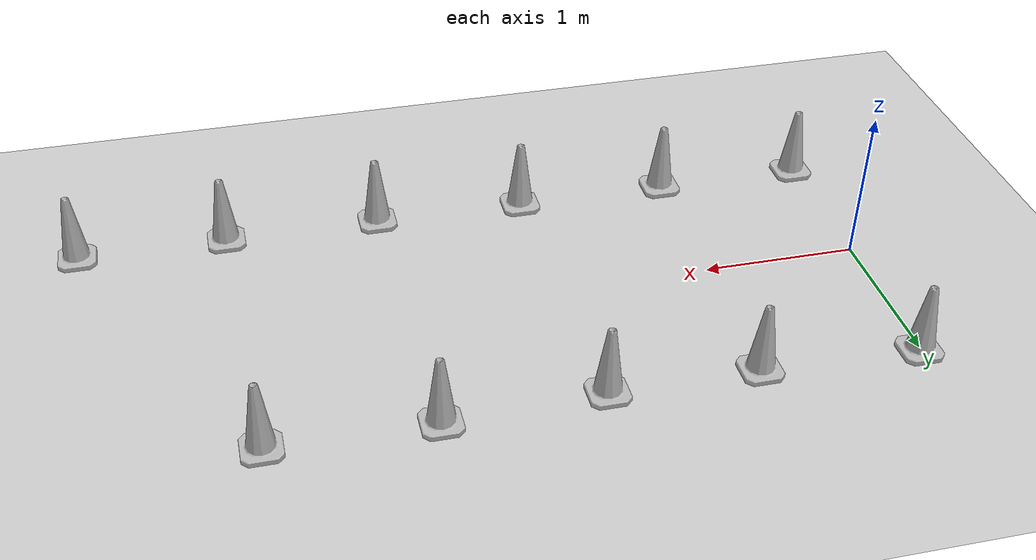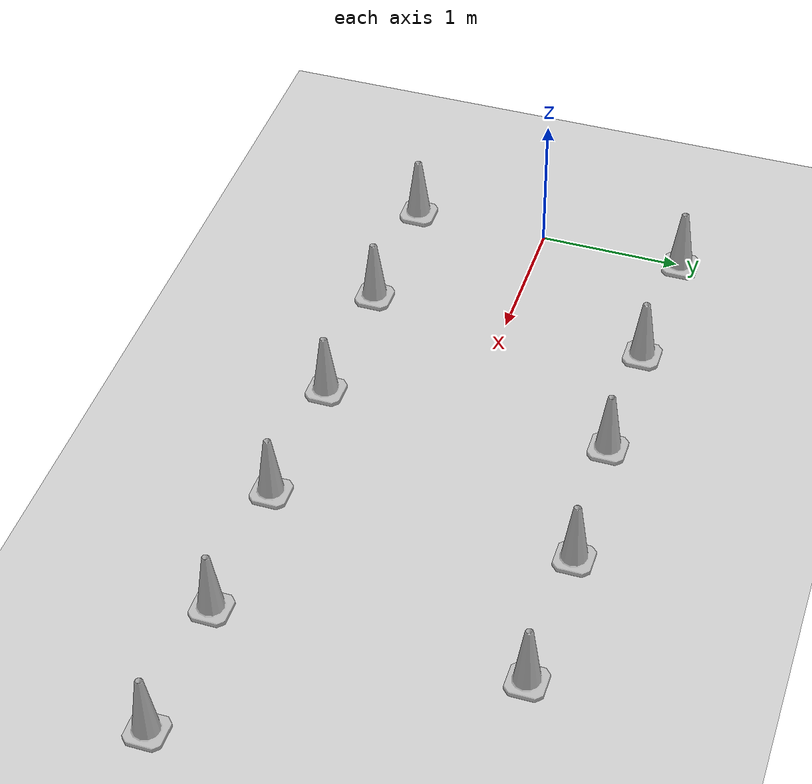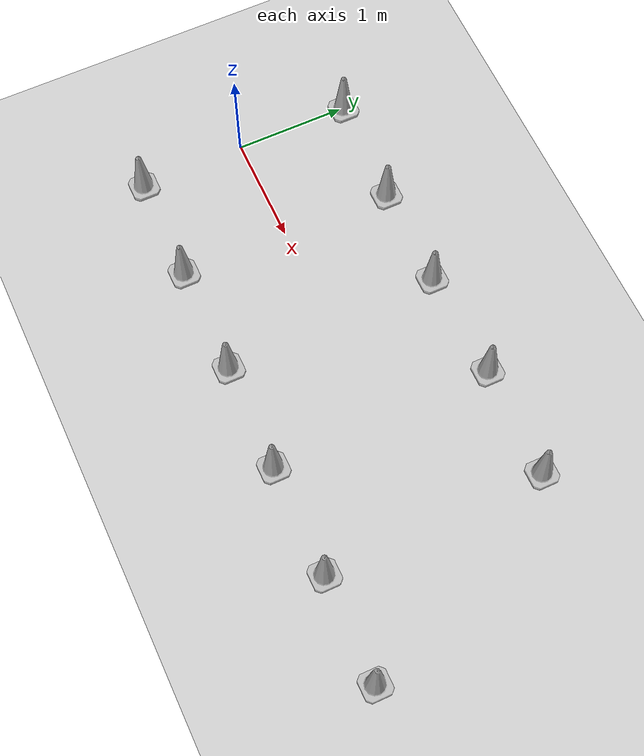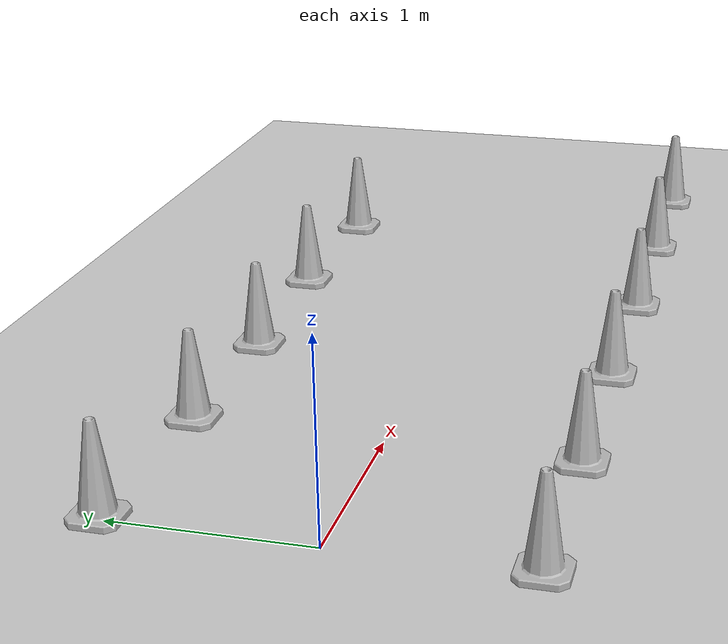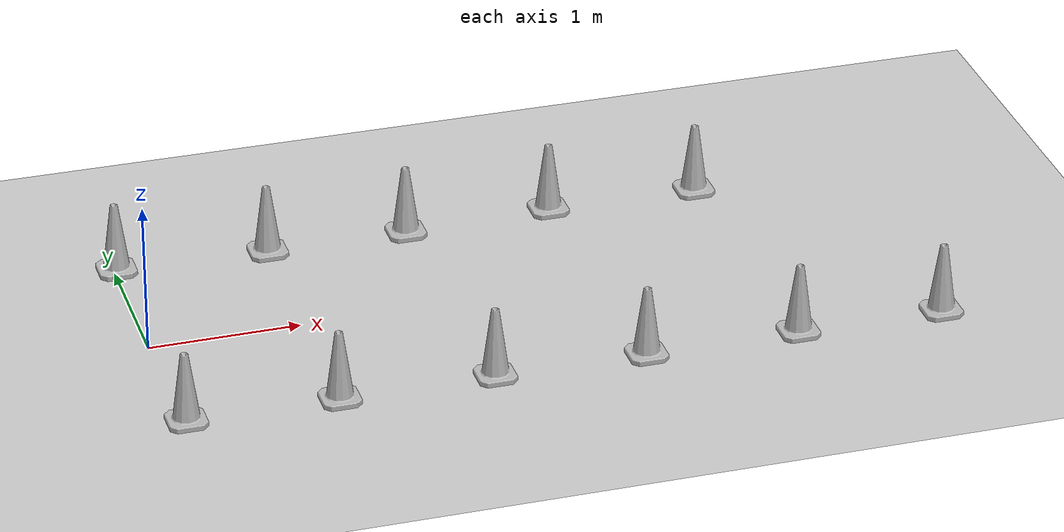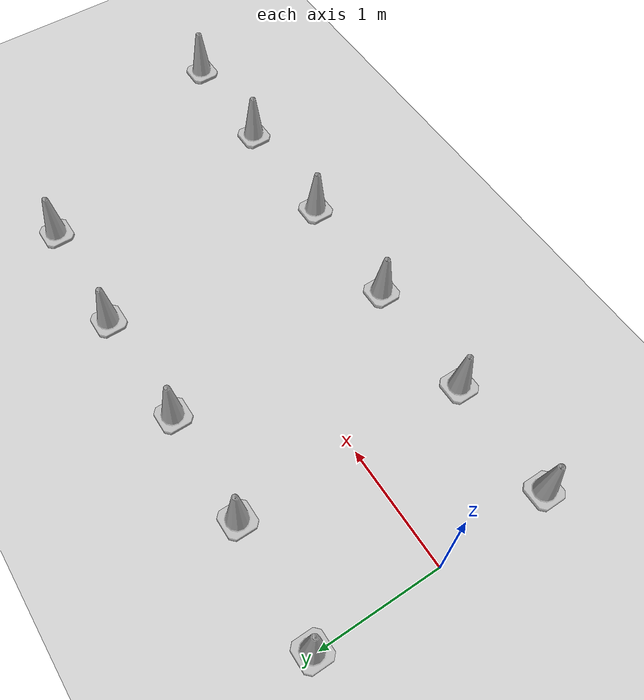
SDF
<sdf version="1.7">
 <world name="default">
  <model name="ground_plane">
   <static>1</static>
   <link name="link">
    <collision name="collision">
     <geometry><plane><normal>0 0 1</normal><size>100 100</size></plane></geometry>
     <surface>
      <contact><collide_bitmask>65535</collide_bitmask></contact>
      <friction><ode><mu>100</mu><mu2>50</mu2></ode></friction>
     </surface>
    </collision>
    <visual name="visual">
     <cast_shadows>0</cast_shadows>
     <geometry><plane><normal>0 0 1</normal><size>100 100</size></plane></geometry>
     <material>
      <script><uri>file://media/materials/scripts/gazebo.material</uri><name>Gazebo/Grey</name></script>
     </material>
    </visual>
   </link>
  </model>
  <model name="Construction_Cone_b">
   <link name="link">
    <inertial>
     <inertia><ixx>1</ixx><ixy>0</ixy><ixz>0</ixz><iyy>1</iyy><iyz>0</iyz><izz>1</izz></inertia>
     <mass>1</mass>
    </inertial>
    <visual name="visual">
     <geometry>
      <mesh><scale>4.9 4.9 4.5</scale><uri>./construction_cone/meshes/construction_cone_b.dae</uri></mesh>
     </geometry>
     <material><shader type="pixel"/></material>
    </visual>
    <collision name="collision">
     <geometry>
      <mesh><uri>./construction_cone/meshes/construction_cone_b.dae</uri><scale>4.9 4.9 4.5</scale></mesh>
     </geometry>
     <surface>
      <friction>
       <ode><mu>1</mu><mu2>1</mu2><fdir1>0 0 0</fdir1><slip1>0</slip1><slip2>0</slip2></ode>
       <torsional>
        <coefficient>1</coefficient>
        <patch_radius>0</patch_radius>
        <surface_radius>0</surface_radius>
        <use_patch_radius>1</use_patch_radius>
        <ode><slip>0</slip></ode>
       </torsional>
      </friction>
      <bounce><restitution_coefficient>0</restitution_coefficient><threshold>1e+06</threshold></bounce>
      <contact>
       <collide_without_contact>0</collide_without_contact>
       <collide_without_contact_bitmask>1</collide_without_contact_bitmask>
       <collide_bitmask>1</collide_bitmask>
       <ode>
        <soft_cfm>0</soft_cfm>
        <soft_erp>0.2</soft_erp>
        <kp>1e+13</kp>
        <kd>1</kd>
        <max_vel>0.01</max_vel>
        <min_depth>0</min_depth>
       </ode>
       <bullet>
        <split_impulse>1</split_impulse>
        <split_impulse_penetration_threshold>-0.01</split_impulse_penetration_threshold>
        <soft_cfm>0</soft_cfm>
        <soft_erp>0.2</soft_erp>
        <kp>1e+13</kp>
        <kd>1</kd>
       </bullet>
      </contact>
     </surface>
    </collision>
   </link>
   <static>0</static>
   <pose>0.026027 -0.961354 -2e-06 0 -0 0</pose>
  </model>
  <model name="Construction_Cone_b_0">
   <link name="link">
    <inertial>
     <inertia><ixx>1</ixx><ixy>0</ixy><ixz>0</ixz><iyy>1</iyy><iyz>0</iyz><izz>1</izz></inertia>
     <mass>1</mass>
    </inertial>
    <visual name="visual">
     <geometry>
      <mesh><scale>4.9 4.9 4.5</scale><uri>./construction_cone/meshes/construction_cone_b.dae</uri></mesh>
     </geometry>
     <material><shader type="pixel"/></material>
    </visual>
    <collision name="collision">
     <geometry>
      <mesh><uri>./construction_cone/meshes/construction_cone_b.dae</uri><scale>4.9 4.9 4.5</scale></mesh>
     </geometry>
     <surface>
      <friction>
       <ode><mu>1</mu><mu2>1</mu2><fdir1>0 0 0</fdir1><slip1>0</slip1><slip2>0</slip2></ode>
       <torsional>
        <coefficient>1</coefficient>
        <patch_radius>0</patch_radius>
        <surface_radius>0</surface_radius>
        <use_patch_radius>1</use_patch_radius>
        <ode><slip>0</slip></ode>
       </torsional>
      </friction>
      <bounce><restitution_coefficient>0</restitution_coefficient><threshold>1e+06</threshold></bounce>
      <contact>
       <collide_without_contact>0</collide_without_contact>
       <collide_without_contact_bitmask>1</collide_without_contact_bitmask>
       <collide_bitmask>1</collide_bitmask>
       <ode>
        <soft_cfm>0</soft_cfm>
        <soft_erp>0.2</soft_erp>
        <kp>1e+13</kp>
        <kd>1</kd>
        <max_vel>0.01</max_vel>
        <min_depth>0</min_depth>
       </ode>
       <bullet>
        <split_impulse>1</split_impulse>
        <split_impulse_penetration_threshold>-0.01</split_impulse_penetration_threshold>
        <soft_cfm>0</soft_cfm>
        <soft_erp>0.2</soft_erp>
        <kp>1e+13</kp>
        <kd>1</kd>
       </bullet>
      </contact>
     </surface>
    </collision>
   </link>
   <static>0</static>
   <pose>1.00444 -0.972853 -3e-06 0 3e-06 0</pose>
  </model>
  <model name="Construction_Cone_b_1">
   <link name="link">
    <inertial>
     <inertia><ixx>1</ixx><ixy>0</ixy><ixz>0</ixz><iyy>1</iyy><iyz>0</iyz><izz>1</izz></inertia>
     <mass>1</mass>
    </inertial>
    <visual name="visual">
     <geometry>
      <mesh><scale>4.9 4.9 4.5</scale><uri>./construction_cone/meshes/construction_cone_b.dae</uri></mesh>
     </geometry>
     <material><shader type="pixel"/></material>
    </visual>
    <collision name="collision">
     <geometry>
      <mesh><uri>./construction_cone/meshes/construction_cone_b.dae</uri><scale>4.9 4.9 4.5</scale></mesh>
     </geometry>
     <surface>
      <friction>
       <ode><mu>1</mu><mu2>1</mu2><fdir1>0 0 0</fdir1><slip1>0</slip1><slip2>0</slip2></ode>
       <torsional>
        <coefficient>1</coefficient>
        <patch_radius>0</patch_radius>
        <surface_radius>0</surface_radius>
        <use_patch_radius>1</use_patch_radius>
        <ode><slip>0</slip></ode>
       </torsional>
      </friction>
      <bounce><restitution_coefficient>0</restitution_coefficient><threshold>1e+06</threshold></bounce>
      <contact>
       <collide_without_contact>0</collide_without_contact>
       <collide_without_contact_bitmask>1</collide_without_contact_bitmask>
       <collide_bitmask>1</collide_bitmask>
       <ode>
        <soft_cfm>0</soft_cfm>
        <soft_erp>0.2</soft_erp>
        <kp>1e+13</kp>
        <kd>1</kd>
        <max_vel>0.01</max_vel>
        <min_depth>0</min_depth>
       </ode>
       <bullet>
        <split_impulse>1</split_impulse>
        <split_impulse_penetration_threshold>-0.01</split_impulse_penetration_threshold>
        <soft_cfm>0</soft_cfm>
        <soft_erp>0.2</soft_erp>
        <kp>1e+13</kp>
        <kd>1</kd>
       </bullet>
      </contact>
     </surface>
    </collision>
   </link>
   <static>0</static>
   <pose>2.01299 -0.976298 -0 1e-06 -1e-06 0</pose>
  </model>
  <model name="Construction_Cone_b_2">
   <link name="link">
    <inertial>
     <inertia><ixx>1</ixx><ixy>0</ixy><ixz>0</ixz><iyy>1</iyy><iyz>0</iyz><izz>1</izz></inertia>
     <mass>1</mass>
    </inertial>
    <visual name="visual">
     <geometry>
      <mesh><scale>4.9 4.9 4.5</scale><uri>./construction_cone/meshes/construction_cone_b.dae</uri></mesh>
     </geometry>
     <material><shader type="pixel"/></material>
    </visual>
    <collision name="collision">
     <geometry>
      <mesh><uri>./construction_cone/meshes/construction_cone_b.dae</uri><scale>4.9 4.9 4.5</scale></mesh>
     </geometry>
     <surface>
      <friction>
       <ode><mu>1</mu><mu2>1</mu2><fdir1>0 0 0</fdir1><slip1>0</slip1><slip2>0</slip2></ode>
       <torsional>
        <coefficient>1</coefficient>
        <patch_radius>0</patch_radius>
        <surface_radius>0</surface_radius>
        <use_patch_radius>1</use_patch_radius>
        <ode><slip>0</slip></ode>
       </torsional>
      </friction>
      <bounce><restitution_coefficient>0</restitution_coefficient><threshold>1e+06</threshold></bounce>
      <contact>
       <collide_without_contact>0</collide_without_contact>
       <collide_without_contact_bitmask>1</collide_without_contact_bitmask>
       <collide_bitmask>1</collide_bitmask>
       <ode>
        <soft_cfm>0</soft_cfm>
        <soft_erp>0.2</soft_erp>
        <kp>1e+13</kp>
        <kd>1</kd>
        <max_vel>0.01</max_vel>
        <min_depth>0</min_depth>
       </ode>
       <bullet>
        <split_impulse>1</split_impulse>
        <split_impulse_penetration_threshold>-0.01</split_impulse_penetration_threshold>
        <soft_cfm>0</soft_cfm>
        <soft_erp>0.2</soft_erp>
        <kp>1e+13</kp>
        <kd>1</kd>
       </bullet>
      </contact>
     </surface>
    </collision>
   </link>
   <static>0</static>
   <pose>3.00611 -0.994358 -5e-06 0 -1e-06 0</pose>
  </model>
  <model name="Construction_Cone_b_3">
   <link name="link">
    <inertial>
     <inertia><ixx>1</ixx><ixy>0</ixy><ixz>0</ixz><iyy>1</iyy><iyz>0</iyz><izz>1</izz></inertia>
     <mass>1</mass>
    </inertial>
    <visual name="visual">
     <geometry>
      <mesh><scale>4.9 4.9 4.5</scale><uri>./construction_cone/meshes/construction_cone_b.dae</uri></mesh>
     </geometry>
     <material><shader type="pixel"/></material>
    </visual>
    <collision name="collision">
     <geometry>
      <mesh><uri>./construction_cone/meshes/construction_cone_b.dae</uri><scale>4.9 4.9 4.5</scale></mesh>
     </geometry>
     <surface>
      <friction>
       <ode><mu>1</mu><mu2>1</mu2><fdir1>0 0 0</fdir1><slip1>0</slip1><slip2>0</slip2></ode>
       <torsional>
        <coefficient>1</coefficient>
        <patch_radius>0</patch_radius>
        <surface_radius>0</surface_radius>
        <use_patch_radius>1</use_patch_radius>
        <ode><slip>0</slip></ode>
       </torsional>
      </friction>
      <bounce><restitution_coefficient>0</restitution_coefficient><threshold>1e+06</threshold></bounce>
      <contact>
       <collide_without_contact>0</collide_without_contact>
       <collide_without_contact_bitmask>1</collide_without_contact_bitmask>
       <collide_bitmask>1</collide_bitmask>
       <ode>
        <soft_cfm>0</soft_cfm>
        <soft_erp>0.2</soft_erp>
        <kp>1e+13</kp>
        <kd>1</kd>
        <max_vel>0.01</max_vel>
        <min_depth>0</min_depth>
       </ode>
       <bullet>
        <split_impulse>1</split_impulse>
        <split_impulse_penetration_threshold>-0.01</split_impulse_penetration_threshold>
        <soft_cfm>0</soft_cfm>
        <soft_erp>0.2</soft_erp>
        <kp>1e+13</kp>
        <kd>1</kd>
       </bullet>
      </contact>
     </surface>
    </collision>
   </link>
   <static>0</static>
   <pose>4.02407 -0.994957 -3e-06 0 -0 0</pose>
  </model>
  <model name="Construction_Cone_b_4">
   <link name="link">
    <inertial>
     <inertia><ixx>1</ixx><ixy>0</ixy><ixz>0</ixz><iyy>1</iyy><iyz>0</iyz><izz>1</izz></inertia>
     <mass>1</mass>
    </inertial>
    <visual name="visual">
     <geometry>
      <mesh><scale>4.9 4.9 4.5</scale><uri>./construction_cone/meshes/construction_cone_b.dae</uri></mesh>
     </geometry>
     <material><shader type="pixel"/></material>
    </visual>
    <collision name="collision">
     <geometry>
      <mesh><uri>./construction_cone/meshes/construction_cone_b.dae</uri><scale>4.9 4.9 4.5</scale></mesh>
     </geometry>
     <surface>
      <friction>
       <ode><mu>1</mu><mu2>1</mu2><fdir1>0 0 0</fdir1><slip1>0</slip1><slip2>0</slip2></ode>
       <torsional>
        <coefficient>1</coefficient>
        <patch_radius>0</patch_radius>
        <surface_radius>0</surface_radius>
        <use_patch_radius>1</use_patch_radius>
        <ode><slip>0</slip></ode>
       </torsional>
      </friction>
      <bounce><restitution_coefficient>0</restitution_coefficient><threshold>1e+06</threshold></bounce>
      <contact>
       <collide_without_contact>0</collide_without_contact>
       <collide_without_contact_bitmask>1</collide_without_contact_bitmask>
       <collide_bitmask>1</collide_bitmask>
       <ode>
        <soft_cfm>0</soft_cfm>
        <soft_erp>0.2</soft_erp>
        <kp>1e+13</kp>
        <kd>1</kd>
        <max_vel>0.01</max_vel>
        <min_depth>0</min_depth>
       </ode>
       <bullet>
        <split_impulse>1</split_impulse>
        <split_impulse_penetration_threshold>-0.01</split_impulse_penetration_threshold>
        <soft_cfm>0</soft_cfm>
        <soft_erp>0.2</soft_erp>
        <kp>1e+13</kp>
        <kd>1</kd>
       </bullet>
      </contact>
     </surface>
    </collision>
   </link>
   <static>0</static>
   <pose>4.99422 -1.0037 -1e-06 1e-06 -0 0</pose>
  </model>
  <model name="Construction_Cone_y">
   <link name="link">
    <inertial>
     <inertia><ixx>1</ixx><ixy>0</ixy><ixz>0</ixz><iyy>1</iyy><iyz>0</iyz><izz>1</izz></inertia>
     <mass>1</mass>
    </inertial>
    <visual name="visual">
     <geometry>
      <mesh><scale>4.9 4.9 4.5</scale><uri>./construction_cone/meshes/construction_cone_y.dae</uri></mesh>
     </geometry>
     <material><shader type="pixel"/></material>
    </visual>
    <collision name="collision">
     <geometry>
      <mesh><uri>./construction_cone/meshes/construction_cone_y.dae</uri><scale>4.9 4.9 4.5</scale></mesh>
     </geometry>
     <surface>
      <friction>
       <ode><mu>1</mu><mu2>1</mu2><fdir1>0 0 0</fdir1><slip1>0</slip1><slip2>0</slip2></ode>
       <torsional>
        <coefficient>1</coefficient>
        <patch_radius>0</patch_radius>
        <surface_radius>0</surface_radius>
        <use_patch_radius>1</use_patch_radius>
        <ode><slip>0</slip></ode>
       </torsional>
      </friction>
      <bounce><restitution_coefficient>0</restitution_coefficient><threshold>1e+06</threshold></bounce>
      <contact>
       <collide_without_contact>0</collide_without_contact>
       <collide_without_contact_bitmask>1</collide_without_contact_bitmask>
       <collide_bitmask>1</collide_bitmask>
       <ode>
        <soft_cfm>0</soft_cfm>
        <soft_erp>0.2</soft_erp>
        <kp>1e+13</kp>
        <kd>1</kd>
        <max_vel>0.01</max_vel>
        <min_depth>0</min_depth>
       </ode>
       <bullet>
        <split_impulse>1</split_impulse>
        <split_impulse_penetration_threshold>-0.01</split_impulse_penetration_threshold>
        <soft_cfm>0</soft_cfm>
        <soft_erp>0.2</soft_erp>
        <kp>1e+13</kp>
        <kd>1</kd>
       </bullet>
      </contact>
     </surface>
    </collision>
   </link>
   <static>0</static>
   <pose>0.020046 1.03238 -2e-06 0 -0 0</pose>
  </model>
  <model name="Construction_Cone_y_0">
   <link name="link">
    <inertial>
     <inertia><ixx>1</ixx><ixy>0</ixy><ixz>0</ixz><iyy>1</iyy><iyz>0</iyz><izz>1</izz></inertia>
     <mass>1</mass>
    </inertial>
    <visual name="visual">
     <geometry>
      <mesh><scale>4.9 4.9 4.5</scale><uri>./construction_cone/meshes/construction_cone_y.dae</uri></mesh>
     </geometry>
     <material><shader type="pixel"/></material>
    </visual>
    <collision name="collision">
     <geometry>
      <mesh><uri>./construction_cone/meshes/construction_cone_y.dae</uri><scale>4.9 4.9 4.5</scale></mesh>
     </geometry>
     <surface>
      <friction>
       <ode><mu>1</mu><mu2>1</mu2><fdir1>0 0 0</fdir1><slip1>0</slip1><slip2>0</slip2></ode>
       <torsional>
        <coefficient>1</coefficient>
        <patch_radius>0</patch_radius>
        <surface_radius>0</surface_radius>
        <use_patch_radius>1</use_patch_radius>
        <ode><slip>0</slip></ode>
       </torsional>
      </friction>
      <bounce><restitution_coefficient>0</restitution_coefficient><threshold>1e+06</threshold></bounce>
      <contact>
       <collide_without_contact>0</collide_without_contact>
       <collide_without_contact_bitmask>1</collide_without_contact_bitmask>
       <collide_bitmask>1</collide_bitmask>
       <ode>
        <soft_cfm>0</soft_cfm>
        <soft_erp>0.2</soft_erp>
        <kp>1e+13</kp>
        <kd>1</kd>
        <max_vel>0.01</max_vel>
        <min_depth>0</min_depth>
       </ode>
       <bullet>
        <split_impulse>1</split_impulse>
        <split_impulse_penetration_threshold>-0.01</split_impulse_penetration_threshold>
        <soft_cfm>0</soft_cfm>
        <soft_erp>0.2</soft_erp>
        <kp>1e+13</kp>
        <kd>1</kd>
       </bullet>
      </contact>
     </surface>
    </collision>
   </link>
   <static>0</static>
   <pose>1.02608 0.992634 -8e-06 0 -1e-06 0</pose>
  </model>
  <model name="Construction_Cone_y_1">
   <link name="link">
    <inertial>
     <inertia><ixx>1</ixx><ixy>0</ixy><ixz>0</ixz><iyy>1</iyy><iyz>0</iyz><izz>1</izz></inertia>
     <mass>1</mass>
    </inertial>
    <visual name="visual">
     <geometry>
      <mesh><scale>4.9 4.9 4.5</scale><uri>./construction_cone/meshes/construction_cone_y.dae</uri></mesh>
     </geometry>
     <material><shader type="pixel"/></material>
    </visual>
    <collision name="collision">
     <geometry>
      <mesh><uri>./construction_cone/meshes/construction_cone_y.dae</uri><scale>4.9 4.9 4.5</scale></mesh>
     </geometry>
     <surface>
      <friction>
       <ode><mu>1</mu><mu2>1</mu2><fdir1>0 0 0</fdir1><slip1>0</slip1><slip2>0</slip2></ode>
       <torsional>
        <coefficient>1</coefficient>
        <patch_radius>0</patch_radius>
        <surface_radius>0</surface_radius>
        <use_patch_radius>1</use_patch_radius>
        <ode><slip>0</slip></ode>
       </torsional>
      </friction>
      <bounce><restitution_coefficient>0</restitution_coefficient><threshold>1e+06</threshold></bounce>
      <contact>
       <collide_without_contact>0</collide_without_contact>
       <collide_without_contact_bitmask>1</collide_without_contact_bitmask>
       <collide_bitmask>1</collide_bitmask>
       <ode>
        <soft_cfm>0</soft_cfm>
        <soft_erp>0.2</soft_erp>
        <kp>1e+13</kp>
        <kd>1</kd>
        <max_vel>0.01</max_vel>
        <min_depth>0</min_depth>
       </ode>
       <bullet>
        <split_impulse>1</split_impulse>
        <split_impulse_penetration_threshold>-0.01</split_impulse_penetration_threshold>
        <soft_cfm>0</soft_cfm>
        <soft_erp>0.2</soft_erp>
        <kp>1e+13</kp>
        <kd>1</kd>
       </bullet>
      </contact>
     </surface>
    </collision>
   </link>
   <static>0</static>
   <pose>1.96742 0.987582 -7e-06 0 -0 0</pose>
  </model>
  <model name="Construction_Cone_y_2">
   <link name="link">
    <inertial>
     <inertia><ixx>1</ixx><ixy>0</ixy><ixz>0</ixz><iyy>1</iyy><iyz>0</iyz><izz>1</izz></inertia>
     <mass>1</mass>
    </inertial>
    <visual name="visual">
     <geometry>
      <mesh><scale>4.9 4.9 4.5</scale><uri>./construction_cone/meshes/construction_cone_y.dae</uri></mesh>
     </geometry>
     <material><shader type="pixel"/></material>
    </visual>
    <collision name="collision">
     <geometry>
      <mesh><uri>./construction_cone/meshes/construction_cone_y.dae</uri><scale>4.9 4.9 4.5</scale></mesh>
     </geometry>
     <surface>
      <friction>
       <ode><mu>1</mu><mu2>1</mu2><fdir1>0 0 0</fdir1><slip1>0</slip1><slip2>0</slip2></ode>
       <torsional>
        <coefficient>1</coefficient>
        <patch_radius>0</patch_radius>
        <surface_radius>0</surface_radius>
        <use_patch_radius>1</use_patch_radius>
        <ode><slip>0</slip></ode>
       </torsional>
      </friction>
      <bounce><restitution_coefficient>0</restitution_coefficient><threshold>1e+06</threshold></bounce>
      <contact>
       <collide_without_contact>0</collide_without_contact>
       <collide_without_contact_bitmask>1</collide_without_contact_bitmask>
       <collide_bitmask>1</collide_bitmask>
       <ode>
        <soft_cfm>0</soft_cfm>
        <soft_erp>0.2</soft_erp>
        <kp>1e+13</kp>
        <kd>1</kd>
        <max_vel>0.01</max_vel>
        <min_depth>0</min_depth>
       </ode>
       <bullet>
        <split_impulse>1</split_impulse>
        <split_impulse_penetration_threshold>-0.01</split_impulse_penetration_threshold>
        <soft_cfm>0</soft_cfm>
        <soft_erp>0.2</soft_erp>
        <kp>1e+13</kp>
        <kd>1</kd>
       </bullet>
      </contact>
     </surface>
    </collision>
   </link>
   <static>0</static>
   <pose>2.96471 1.02472 -6e-06 0 1e-06 0</pose>
  </model>
  <model name="Construction_Cone_y_3">
   <link name="link">
    <inertial>
     <inertia><ixx>1</ixx><ixy>0</ixy><ixz>0</ixz><iyy>1</iyy><iyz>0</iyz><izz>1</izz></inertia>
     <mass>1</mass>
    </inertial>
    <visual name="visual">
     <geometry>
      <mesh><scale>4.9 4.9 4.5</scale><uri>./construction_cone/meshes/construction_cone_y.dae</uri></mesh>
     </geometry>
     <material><shader type="pixel"/></material>
    </visual>
    <collision name="collision">
     <geometry>
      <mesh><uri>./construction_cone/meshes/construction_cone_y.dae</uri><scale>4.9 4.9 4.5</scale></mesh>
     </geometry>
     <surface>
      <friction>
       <ode><mu>1</mu><mu2>1</mu2><fdir1>0 0 0</fdir1><slip1>0</slip1><slip2>0</slip2></ode>
       <torsional>
        <coefficient>1</coefficient>
        <patch_radius>0</patch_radius>
        <surface_radius>0</surface_radius>
        <use_patch_radius>1</use_patch_radius>
        <ode><slip>0</slip></ode>
       </torsional>
      </friction>
      <bounce><restitution_coefficient>0</restitution_coefficient><threshold>1e+06</threshold></bounce>
      <contact>
       <collide_without_contact>0</collide_without_contact>
       <collide_without_contact_bitmask>1</collide_without_contact_bitmask>
       <collide_bitmask>1</collide_bitmask>
       <ode>
        <soft_cfm>0</soft_cfm>
        <soft_erp>0.2</soft_erp>
        <kp>1e+13</kp>
        <kd>1</kd>
        <max_vel>0.01</max_vel>
        <min_depth>0</min_depth>
       </ode>
       <bullet>
        <split_impulse>1</split_impulse>
        <split_impulse_penetration_threshold>-0.01</split_impulse_penetration_threshold>
        <soft_cfm>0</soft_cfm>
        <soft_erp>0.2</soft_erp>
        <kp>1e+13</kp>
        <kd>1</kd>
       </bullet>
      </contact>
     </surface>
    </collision>
   </link>
   <static>0</static>
   <pose>3.98231 1.00653 -7e-06 -1e-06 1e-06 0</pose>
  </model>
 </world>
</sdf>
